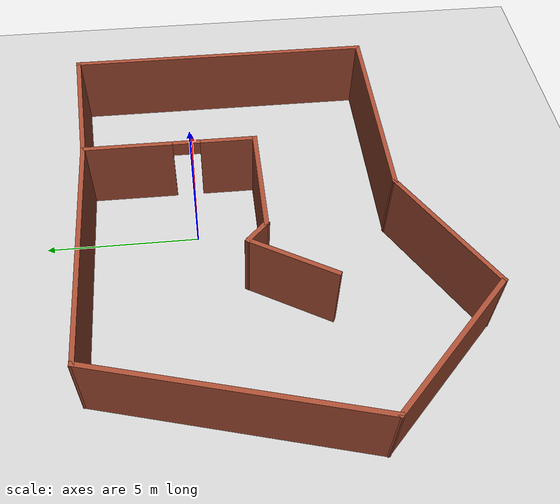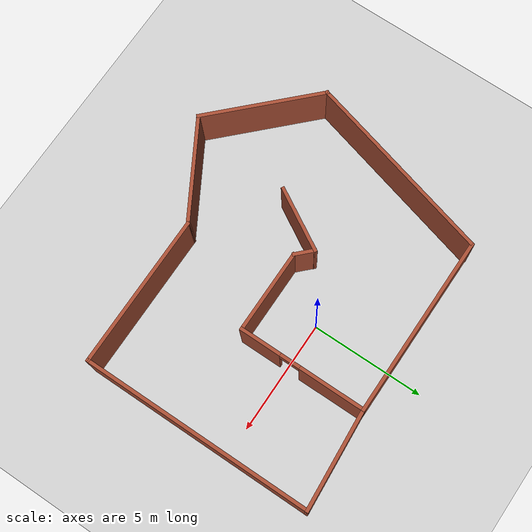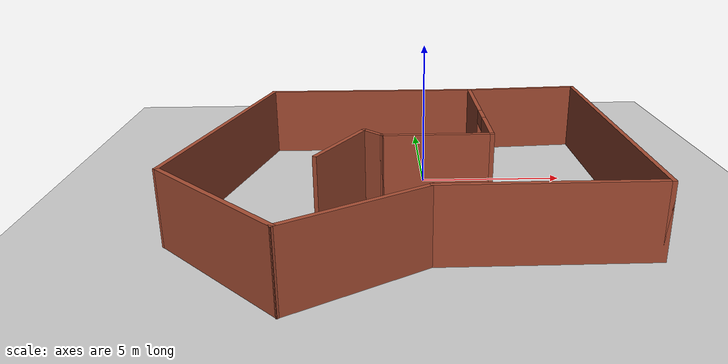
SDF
<sdf version="1.7">
 <world name="default">
  <light name="sun" type="directional">
   <pose>0 0 10 0 -0 0</pose>
   <diffuse>0.8 0.8 0.8 1</diffuse>
   <specular>0.2 0.2 0.2 1</specular>
   <attenuation>
    <range>1000</range>
    <constant>0.9</constant>
    <linear>0.01</linear>
    <quadratic>0.001</quadratic>
   </attenuation>
   <direction>-0.5 0.1 -0.9</direction>
   <spot><inner_angle>0</inner_angle><outer_angle>0</outer_angle><falloff>0</falloff></spot>
  </light>
  <model name="ground_plane">
   <static>1</static>
   <link name="link">
    <collision name="collision">
     <geometry><plane><normal>0 0 1</normal><size>100 100</size></plane></geometry>
     <surface>
      <contact><collide_bitmask>65535</collide_bitmask></contact>
      <friction><ode><mu>100</mu><mu2>50</mu2></ode></friction>
     </surface>
    </collision>
    <visual name="visual">
     <cast_shadows>0</cast_shadows>
     <geometry><plane><normal>0 0 1</normal><size>100 100</size></plane></geometry>
     <material>
      <script><uri>file://media/materials/scripts/gazebo.material</uri><name>Gazebo/Grey</name></script>
     </material>
    </visual>
   </link>
  </model>
  <gravity>0 0 -9.8</gravity>
  <magnetic_field>6e-06 2.3e-05 -4.2e-05</magnetic_field>
  <atmosphere type="adiabatic"/>
  <physics type="ode">
   <max_step_size>0.001</max_step_size>
   <real_time_factor>1</real_time_factor>
   <real_time_update_rate>1000</real_time_update_rate>
  </physics>
  <scene><ambient>0.4 0.4 0.4 1</ambient><background>0.7 0.7 0.7 1</background><shadows>1</shadows></scene>
  <spherical_coordinates>
   <surface_model>EARTH_WGS84</surface_model>
   <latitude_deg>0</latitude_deg>
   <longitude_deg>0</longitude_deg>
   <elevation>0</elevation>
   <heading_deg>0</heading_deg>
  </spherical_coordinates>
  <model name="Untitled">
   <pose>-0.799362 -2.38578 0 0 -0 0</pose>
   <link name="Wall_0">
    <collision name="Wall_0_Collision">
     <geometry><box><size>3 0.15 2.5</size></box></geometry>
     <pose>0 0 1.25 0 -0 0</pose>
    </collision>
    <visual name="Wall_0_Visual">
     <pose>0 0 1.25 0 -0 0</pose>
     <geometry><box><size>3 0.15 2.5</size></box></geometry>
     <material>
      <script><uri>file://media/materials/scripts/gazebo.material</uri><name>Gazebo/Bricks</name></script>
      <ambient>1 1 1 1</ambient>
     </material>
     <meta><layer>0</layer></meta>
    </visual>
    <pose>-2.00814 -0.330134 0 0 -0 1.0472</pose>
   </link>
   <link name="Wall_1">
    <collision name="Wall_1_Collision">
     <geometry><box><size>1 0.15 2.5</size></box></geometry>
     <pose>0 0 1.25 0 -0 0</pose>
    </collision>
    <visual name="Wall_1_Visual">
     <pose>0 0 1.25 0 -0 0</pose>
     <geometry><box><size>1 0.15 2.5</size></box></geometry>
     <material>
      <script><uri>file://media/materials/scripts/gazebo.material</uri><name>Gazebo/Bricks</name></script>
      <ambient>1 1 1 1</ambient>
     </material>
     <meta><layer>0</layer></meta>
    </visual>
    <pose>-0.995118 0.603432 0 0 -0 -0.785398</pose>
   </link>
   <link name="Wall_10">
    <collision name="Wall_10_Collision">
     <geometry><box><size>4.45208 0.15 2.5</size></box></geometry>
     <pose>0 0 1.25 0 -0 0</pose>
    </collision>
    <visual name="Wall_10_Visual">
     <pose>0 0 1.25 0 -0 0</pose>
     <geometry><box><size>4.45208 0.15 2.5</size></box></geometry>
     <material>
      <script><uri>file://media/materials/scripts/gazebo.material</uri><name>Gazebo/Bricks</name></script>
      <ambient>1 1 1 1</ambient>
     </material>
     <meta><layer>0</layer></meta>
    </visual>
    <pose>5.05085 6.05792 0 0 -0 -3.06947</pose>
   </link>
   <link name="Wall_2">
    <collision name="Wall_2_Collision">
     <geometry><box><size>3.75 0.15 2.5</size></box></geometry>
     <pose>0 0 1.25 0 -0 0</pose>
    </collision>
    <visual name="Wall_2_Visual">
     <pose>0 0 1.25 0 -0 0</pose>
     <geometry><box><size>3.75 0.15 2.5</size></box></geometry>
     <material>
      <script><uri>file://media/materials/scripts/gazebo.material</uri><name>Gazebo/Bricks</name></script>
      <ambient>1 1 1 1</ambient>
     </material>
     <meta><layer>0</layer></meta>
    </visual>
    <pose>1.1054 0.302912 0 0 -0 0</pose>
   </link>
   <link name="Wall_3">
    <pose>2.9054 3.10291 0 0 -0 1.5708</pose>
    <visual name="Wall_3_Visual_0">
     <pose>-1.93886 0 1.25 0 -0 0</pose>
     <geometry><box><size>1.87229 0.15 2.5</size></box></geometry>
     <material>
      <script><uri>file://media/materials/scripts/gazebo.material</uri><name>Gazebo/Bricks</name></script>
      <ambient>1 1 1 1</ambient>
     </material>
     <meta><layer>0</layer></meta>
    </visual>
    <collision name="Wall_3_Collision_0">
     <geometry><box><size>1.87229 0.15 2.5</size></box></geometry>
     <pose>-1.93886 0 1.25 0 -0 0</pose>
    </collision>
    <visual name="Wall_3_Visual_1">
     <pose>1.38614 0 1.25 0 -0 0</pose>
     <geometry><box><size>2.97771 0.15 2.5</size></box></geometry>
     <material>
      <script><uri>file://media/materials/scripts/gazebo.material</uri><name>Gazebo/Bricks</name></script>
      <ambient>1 1 1 1</ambient>
     </material>
     <meta><layer>0</layer></meta>
    </visual>
    <collision name="Wall_3_Collision_1">
     <geometry><box><size>2.97771 0.15 2.5</size></box></geometry>
     <pose>1.38614 0 1.25 0 -0 0</pose>
    </collision>
    <visual name="Wall_3_Visual_2">
     <pose>-0.552714 0 2.25 0 -0 0</pose>
     <geometry><box><size>0.9 0.15 0.5</size></box></geometry>
     <material>
      <script><uri>file://media/materials/scripts/gazebo.material</uri><name>Gazebo/Bricks</name></script>
      <ambient>1 1 1 1</ambient>
     </material>
     <meta><layer>0</layer></meta>
    </visual>
    <collision name="Wall_3_Collision_2">
     <geometry><box><size>0.9 0.15 0.5</size></box></geometry>
     <pose>-0.552714 0 2.25 0 -0 0</pose>
    </collision>
   </link>
   <link name="Wall_4">
    <collision name="Wall_4_Collision">
     <geometry><box><size>8 0.15 2.5</size></box></geometry>
     <pose>0 0 1.25 0 -0 0</pose>
    </collision>
    <visual name="Wall_4_Visual">
     <pose>0 0 1.25 0 -0 0</pose>
     <geometry><box><size>8 0.15 2.5</size></box></geometry>
     <material>
      <script><uri>file://media/materials/scripts/gazebo.material</uri><name>Gazebo/Bricks</name></script>
      <ambient>1 1 1 1</ambient>
     </material>
     <meta><layer>0</layer></meta>
    </visual>
    <pose>-1.0196 5.90291 0 0 -0 3.14159</pose>
   </link>
   <link name="Wall_5">
    <collision name="Wall_5_Collision">
     <geometry><box><size>8.75 0.15 2.5</size></box></geometry>
     <pose>0 0 1.25 0 -0 0</pose>
    </collision>
    <visual name="Wall_5_Visual">
     <pose>0 0 1.25 0 -0 0</pose>
     <geometry><box><size>8.75 0.15 2.5</size></box></geometry>
     <material>
      <script><uri>file://media/materials/scripts/gazebo.material</uri><name>Gazebo/Bricks</name></script>
      <ambient>1 1 1 1</ambient>
     </material>
     <meta><layer>0</layer></meta>
    </visual>
    <pose>-6.05752 1.74943 0 0 -0 -1.8326</pose>
   </link>
   <link name="Wall_6">
    <collision name="Wall_6_Collision">
     <geometry><box><size>5.5 0.15 2.5</size></box></geometry>
     <pose>0 0 1.25 0 -0 0</pose>
    </collision>
    <visual name="Wall_6_Visual">
     <pose>0 0 1.25 0 -0 0</pose>
     <geometry><box><size>5.5 0.15 2.5</size></box></geometry>
     <material>
      <script><uri>file://media/materials/scripts/gazebo.material</uri><name>Gazebo/Bricks</name></script>
      <ambient>1 1 1 1</ambient>
     </material>
     <meta><layer>0</layer></meta>
    </visual>
    <pose>-5.27893 -4.29556 0 0 -0 -0.785398</pose>
   </link>
   <link name="Wall_7">
    <collision name="Wall_7_Collision">
     <geometry><box><size>4.75 0.15 2.5</size></box></geometry>
     <pose>0 0 1.25 0 -0 0</pose>
    </collision>
    <visual name="Wall_7_Visual">
     <pose>0 0 1.25 0 -0 0</pose>
     <geometry><box><size>4.75 0.15 2.5</size></box></geometry>
     <material>
      <script><uri>file://media/materials/scripts/gazebo.material</uri><name>Gazebo/Bricks</name></script>
      <ambient>1 1 1 1</ambient>
     </material>
     <meta><layer>0</layer></meta>
    </visual>
    <pose>-1.39556 -5.03707 0 0 -0 0.523599</pose>
   </link>
   <link name="Wall_8">
    <collision name="Wall_8_Collision">
     <geometry><box><size>6.75 0.15 2.5</size></box></geometry>
     <pose>0 0 1.25 0 -0 0</pose>
    </collision>
    <visual name="Wall_8_Visual">
     <pose>0 0 1.25 0 -0 0</pose>
     <geometry><box><size>6.75 0.15 2.5</size></box></geometry>
     <material>
      <script><uri>file://media/materials/scripts/gazebo.material</uri><name>Gazebo/Bricks</name></script>
      <ambient>1 1 1 1</ambient>
     </material>
     <meta><layer>0</layer></meta>
    </visual>
    <pose>3.8963 -3.88707 0 0 -0 0</pose>
   </link>
   <link name="Wall_9">
    <collision name="Wall_9_Collision">
     <geometry><box><size>10.25 0.15 2.5</size></box></geometry>
     <pose>0 0 1.25 0 -0 0</pose>
    </collision>
    <visual name="Wall_9_Visual">
     <pose>0 0 1.25 0 -0 0</pose>
     <geometry><box><size>10.25 0.15 2.5</size></box></geometry>
     <material>
      <script><uri>file://media/materials/scripts/gazebo.material</uri><name>Gazebo/Bricks</name></script>
      <ambient>1 1 1 1</ambient>
     </material>
     <meta><layer>0</layer></meta>
    </visual>
    <pose>7.1963 1.16293 0 0 -0 1.5708</pose>
   </link>
   <static>1</static>
  </model>
 </world>
</sdf>
